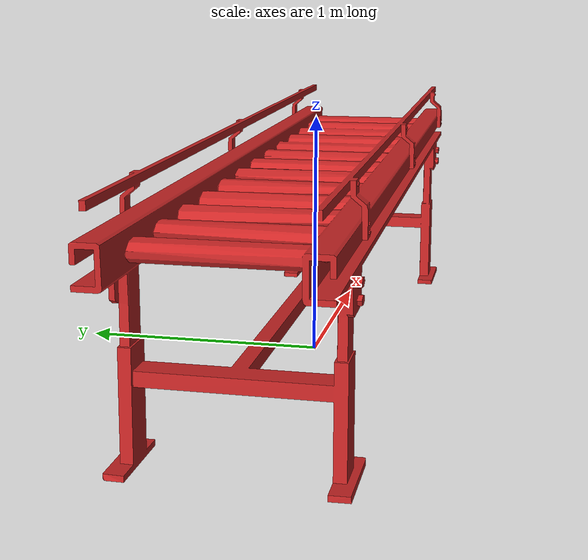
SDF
<?xml version="1.0" ?>
<sdf version="1.5">
  <model name="conveyor_belt">

    <pose>0 0 0  0 0 0</pose>

    <static>false</static>
    <link name="link">
      <inertial>
        <mass>25.0</mass>
        <inertia>
          <ixx>1</ixx>
          <ixy>0</ixy>
          <ixz>0</ixz>
          <iyy>1</iyy>
          <iyz>0</iyz>
          <izz>1</izz>
        </inertia>
      </inertial>

      <collision name="collision">
	    <pose>0 0 0  0 0 0</pose>
        <geometry>
          <mesh>
            <uri>model://conveyor_belt/meshes/conveyor.stl</uri>
          </mesh>
        </geometry>
      </collision>

      <visual name="visual">
        <geometry>
          <mesh>
            <uri>model://conveyor_belt/meshes/conveyor.stl</uri>
          </mesh>
        </geometry>
        <material>
           <script>
  <name>Gazebo/RedBright</name>
  </script>
        </material>
      </visual>
    </link>
  </model>
</sdf>
